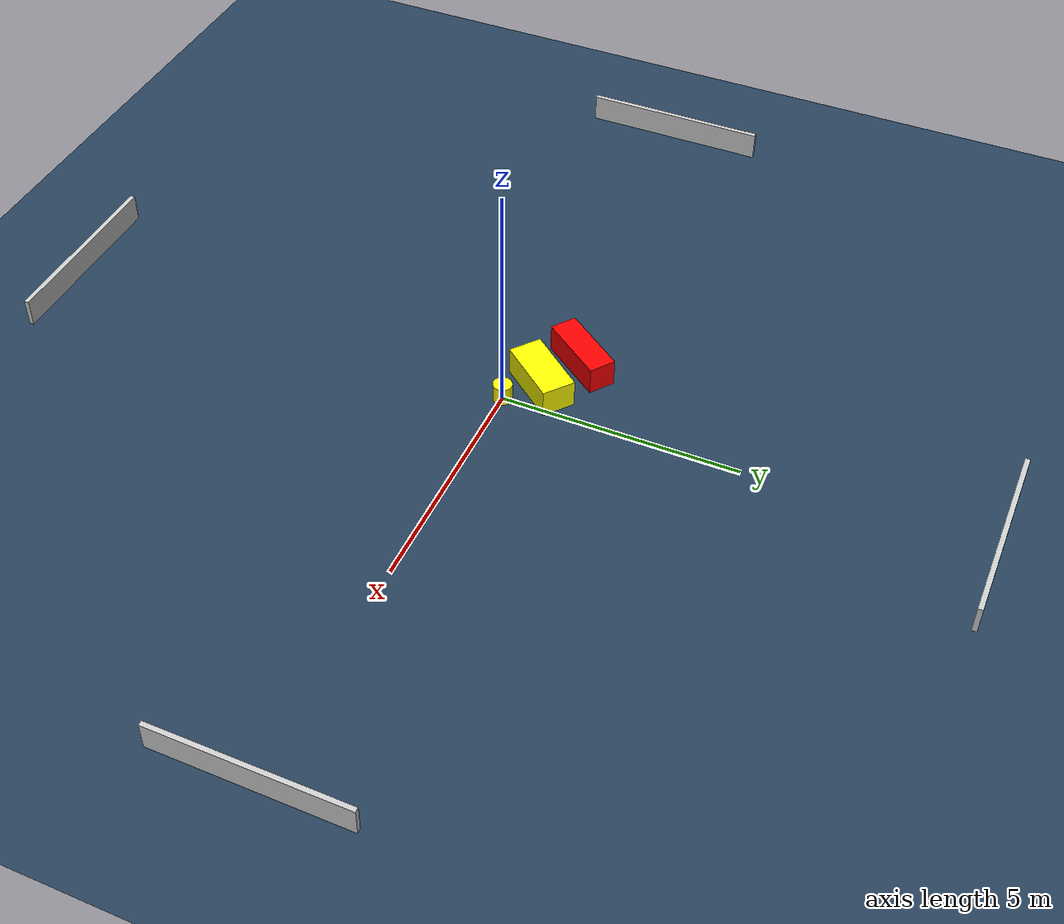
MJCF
<?xml version="1.0" ?>
<mujoco model="generated_environment">
  <option timestep="0.01" integrator="RK4" cone="elliptic"/>
  <default>
    <geom density="1"/>
  </default>
  <asset>
    <texture builtin="gradient" height="3072" name="skybox" rgb1="0.3 0.5 0.7" rgb2="0 0 0" type="skybox" width="512"/>
    <texture builtin="checker" height="300" name="groundplane" rgb1="0.2 0.3 0.4" rgb2="0.1 0.2 0.3" type="2d" width="300"/>
    <material name="groundplane" reflectance="0.2" texrepeat="5 5" texture="groundplane"/>
  </asset>
  <worldbody>
    <light dir="0 0 -1" directional="true" pos="0 0 1.5"/>
    <geom condim="3" friction="0.5 0.005 0.001" material="groundplane" name="floor" pos="0 0 0" size="0 0 0.05" type="plane"/>
    <body name="walls">
      <geom name="wall_1" condim="4" pos="-10.0 0.0 0.3" rgba="0.800000011920929 0.800000011920929 0.800000011920929 1.0" size="0.05 2.0 0.3" type="box"/>
      <geom name="wall_2" condim="4" pos="10.0 0.0 0.3" rgba="0.800000011920929 0.800000011920929 0.800000011920929 1.0" size="0.05 2.0 0.3" type="box"/>
      <geom name="wall_3" condim="4" pos="0.0 -10.0 0.3" rgba="0.800000011920929 0.800000011920929 0.800000011920929 1.0" size="2.0 0.05 0.3" type="box"/>
      <geom name="wall_4" condim="4" pos="0.0 10.0 0.3" rgba="0.800000011920929 0.800000011920929 0.800000011920929 1.0" size="2.0 0.05 0.3" type="box"/>
    </body>
    <body name="robot">
      <joint name="joint_x" type="slide" pos="0 0 0" axis="1 0 0"/>
      <joint name="joint_y" type="slide" pos="0 0 0" axis="0 1 0"/>
      <geom name="robot" type="cylinder" pos="0.0 0.0 0.2" size="0.2 0.2 0.0" mass="5.0" friction="1.0 0.005 0.0001" condim="4" rgba="1.0 1.0 0.0 1.0"/>
    </body>
    <body name="obstacle_1_movable">
      <geom name="obstacle_1_movable" condim="4" pos="-0.6093638273982913 0.5843811386073768 0.3" euler="0 0 141.21441516568768" friction="0.0 0.005 0.001" rgba="1.0 1.0 0.0 1.0" size="0.3547228305615828 0.7297299175590326 0.3" type="box" mass="0.1"/>
      <joint type="free"/>
    </body>
    <body name="obstacle_2_static">
      <geom name="obstacle_2_static" condim="4" pos="-1.5534075831075316 1.084238169170766 0.3" euler="0 0 323.75342350444356" friction="0.0 0.005 0.001" rgba="1.0 0.0 0.0 1.0" size="0.28447602035145814 0.767825986047022 0.3" type="box"/>
    </body>
  </worldbody>
  <actuator>
    <motor name="actuator_x" joint="joint_x" gear="1" ctrlrange="-1 1"/>
    <motor name="actuator_y" joint="joint_y" gear="1" ctrlrange="-1 1"/>
  </actuator>
</mujoco>
